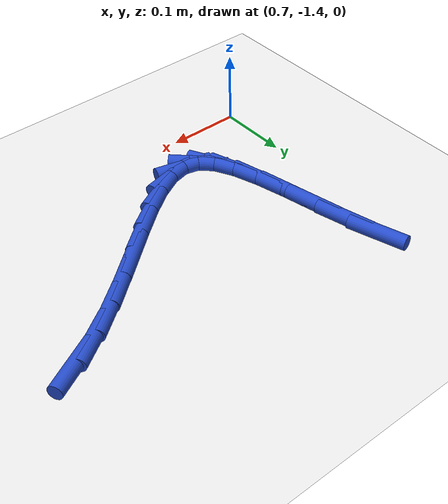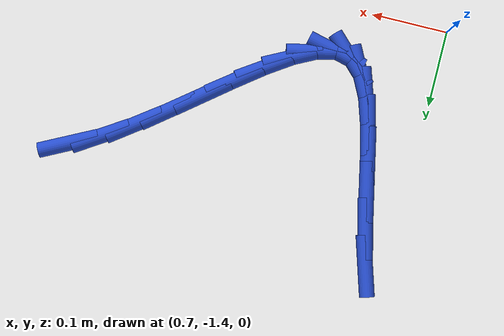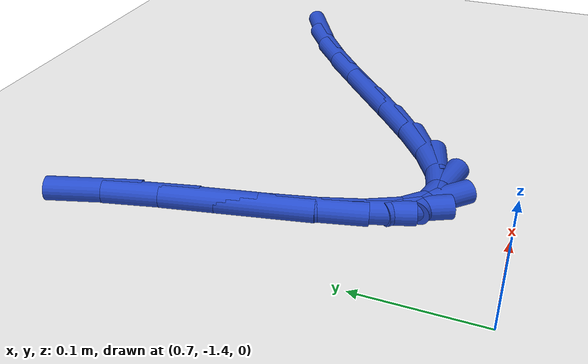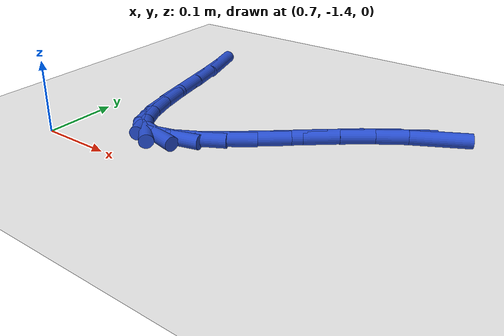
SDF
<sdf version="1.6">
 <world name="default">
  <model name="ground_plane">
   <static>1</static>
   <link name="link">
    <collision name="collision">
     <geometry><plane><normal>0 0 1</normal><size>100 100</size></plane></geometry>
     <surface><friction><ode><mu>100</mu><mu2>50</mu2></ode></friction></surface>
    </collision>
    <visual name="visual">
     <cast_shadows>0</cast_shadows>
     <geometry><plane><normal>0 0 1</normal><size>100 100</size></plane></geometry>
     <material>
      <script><uri>file://media/materials/scripts/gazebo.material</uri><name>Gazebo/WhiteGlow</name></script>
     </material>
    </visual>
   </link>
  </model>
  <model name="line">
   <link name="link_158">
    <pose>1.144235871740645 -1.1378909959665773 0.01 0 1.57 0.47214731389015957</pose>
    <collision name="collision">
     <geometry><cylinder><radius>0.01</radius><length>0.08</length></cylinder></geometry>
    </collision>
    <visual name="visual">
     <material>
      <script><name>Gazebo/Blue</name><uri>file://media/materials/scripts/gazebo.material</uri></script>
     </material>
     <geometry><cylinder><radius>0.01</radius><length>0.08</length></cylinder></geometry>
    </visual>
   </link>
   <link name="link_159">
    <pose>1.1058242495300072 -1.1575066681073916 0.01 0 1.57 0.5746946647130384</pose>
    <collision name="collision">
     <geometry><cylinder><radius>0.01</radius><length>0.08</length></cylinder></geometry>
    </collision>
    <visual name="visual">
     <material>
      <script><name>Gazebo/Blue</name><uri>file://media/materials/scripts/gazebo.material</uri></script>
     </material>
     <geometry><cylinder><radius>0.01</radius><length>0.08</length></cylinder></geometry>
    </visual>
   </link>
   <link name="link_160">
    <pose>1.067113676553233 -1.1825761002962496 0.01 0 1.57 0.6373717543687683</pose>
    <collision name="collision">
     <geometry><cylinder><radius>0.01</radius><length>0.08</length></cylinder></geometry>
    </collision>
    <visual name="visual">
     <material>
      <script><name>Gazebo/Blue</name><uri>file://media/materials/scripts/gazebo.material</uri></script>
     </material>
     <geometry><cylinder><radius>0.01</radius><length>0.08</length></cylinder></geometry>
    </visual>
   </link>
   <link name="link_161">
    <pose>1.0286617596268097 -1.2110484600849227 0.01 0 1.57 0.6701216190291546</pose>
    <collision name="collision">
     <geometry><cylinder><radius>0.01</radius><length>0.08</length></cylinder></geometry>
    </collision>
    <visual name="visual">
     <material>
      <script><name>Gazebo/Blue</name><uri>file://media/materials/scripts/gazebo.material</uri></script>
     </material>
     <geometry><cylinder><radius>0.01</radius><length>0.08</length></cylinder></geometry>
    </visual>
   </link>
   <link name="link_162">
    <pose>0.9910261055672254 -1.2408729150251838 0.01 0 1.57 0.6766933497137563</pose>
    <collision name="collision">
     <geometry><cylinder><radius>0.01</radius><length>0.08</length></cylinder></geometry>
    </collision>
    <visual name="visual">
     <material>
      <script><name>Gazebo/Blue</name><uri>file://media/materials/scripts/gazebo.material</uri></script>
     </material>
     <geometry><cylinder><radius>0.01</radius><length>0.08</length></cylinder></geometry>
    </visual>
   </link>
   <link name="link_163">
    <pose>0.9547643211909678 -1.2699986326688042 0.01 0 1.57 0.6551137618029506</pose>
    <collision name="collision">
     <geometry><cylinder><radius>0.01</radius><length>0.08</length></cylinder></geometry>
    </collision>
    <visual name="visual">
     <material>
      <script><name>Gazebo/Blue</name><uri>file://media/materials/scripts/gazebo.material</uri></script>
     </material>
     <geometry><cylinder><radius>0.01</radius><length>0.08</length></cylinder></geometry>
    </visual>
   </link>
   <link name="link_164">
    <pose>0.9204340133145238 -1.296374780567556 0.01 0 1.57 0.5955365280864191</pose>
    <collision name="collision">
     <geometry><cylinder><radius>0.01</radius><length>0.08</length></cylinder></geometry>
    </collision>
    <visual name="visual">
     <material>
      <script><name>Gazebo/Blue</name><uri>file://media/materials/scripts/gazebo.material</uri></script>
     </material>
     <geometry><cylinder><radius>0.01</radius><length>0.08</length></cylinder></geometry>
    </visual>
   </link>
   <link name="link_165">
    <pose>0.8885927887543835 -1.317950526273211 0.01 0 1.57 0.4726980505934005</pose>
    <collision name="collision">
     <geometry><cylinder><radius>0.01</radius><length>0.08</length></cylinder></geometry>
    </collision>
    <visual name="visual">
     <material>
      <script><name>Gazebo/Blue</name><uri>file://media/materials/scripts/gazebo.material</uri></script>
     </material>
     <geometry><cylinder><radius>0.01</radius><length>0.08</length></cylinder></geometry>
    </visual>
   </link>
   <link name="link_166">
    <pose>0.8597982543270333 -1.332675037337541 0.01 0 1.57 0.22714980499078483</pose>
    <collision name="collision">
     <geometry><cylinder><radius>0.01</radius><length>0.08</length></cylinder></geometry>
    </collision>
    <visual name="visual">
     <material>
      <script><name>Gazebo/Blue</name><uri>file://media/materials/scripts/gazebo.material</uri></script>
     </material>
     <geometry><cylinder><radius>0.01</radius><length>0.08</length></cylinder></geometry>
    </visual>
   </link>
   <link name="link_167">
    <pose>0.8346080168489612 -1.3384974813123178 0.01 0 1.57 -0.23857038564587973</pose>
    <collision name="collision">
     <geometry><cylinder><radius>0.01</radius><length>0.08</length></cylinder></geometry>
    </collision>
    <visual name="visual">
     <material>
      <script><name>Gazebo/Blue</name><uri>file://media/materials/scripts/gazebo.material</uri></script>
     </material>
     <geometry><cylinder><radius>0.01</radius><length>0.08</length></cylinder></geometry>
    </visual>
   </link>
   <link name="link_168">
    <pose>0.8135740431879006 -1.333381976787247 0.01 0 1.57 -0.7825122673406362</pose>
    <collision name="collision">
     <geometry><cylinder><radius>0.01</radius><length>0.08</length></cylinder></geometry>
    </collision>
    <visual name="visual">
     <material>
      <script><name>Gazebo/Blue</name><uri>file://media/materials/scripts/gazebo.material</uri></script>
     </material>
     <geometry><cylinder><radius>0.01</radius><length>0.08</length></cylinder></geometry>
    </visual>
   </link>
   <link name="link_169">
    <pose>0.7967387071423611 -1.3166435314539824 0.01 0 1.57 -1.1016666546846905</pose>
    <collision name="collision">
     <geometry><cylinder><radius>0.01</radius><length>0.08</length></cylinder></geometry>
    </collision>
    <visual name="visual">
     <material>
      <script><name>Gazebo/Blue</name><uri>file://media/materials/scripts/gazebo.material</uri></script>
     </material>
     <geometry><cylinder><radius>0.01</radius><length>0.08</length></cylinder></geometry>
    </visual>
   </link>
   <link name="link_170">
    <pose>0.7832362118712947 -1.2900046382974086 0.01 0 1.57 -1.2593250480338853</pose>
    <collision name="collision">
     <geometry><cylinder><radius>0.01</radius><length>0.08</length></cylinder></geometry>
    </collision>
    <visual name="visual">
     <material>
      <script><name>Gazebo/Blue</name><uri>file://media/materials/scripts/gazebo.material</uri></script>
     </material>
     <geometry><cylinder><radius>0.01</radius><length>0.08</length></cylinder></geometry>
    </visual>
   </link>
   <link name="link_171">
    <pose>0.7721069627208195 -1.2554364405506164 0.01 0 1.57 -1.3355016721573618</pose>
    <collision name="collision">
     <geometry><cylinder><radius>0.01</radius><length>0.08</length></cylinder></geometry>
    </collision>
    <visual name="visual">
     <material>
      <script><name>Gazebo/Blue</name><uri>file://media/materials/scripts/gazebo.material</uri></script>
     </material>
     <geometry><cylinder><radius>0.01</radius><length>0.08</length></cylinder></geometry>
    </visual>
   </link>
   <link name="link_172">
    <pose>0.7623913650370522 -1.214910081446695 0.01 0 1.57 -1.365661028894381</pose>
    <collision name="collision">
     <geometry><cylinder><radius>0.01</radius><length>0.08</length></cylinder></geometry>
    </collision>
    <visual name="visual">
     <material>
      <script><name>Gazebo/Blue</name><uri>file://media/materials/scripts/gazebo.material</uri></script>
     </material>
     <geometry><cylinder><radius>0.01</radius><length>0.08</length></cylinder></geometry>
    </visual>
   </link>
   <link name="link_173">
    <pose>0.7531298241661103 -1.1703967042187347 0.01 0 1.57 -1.3638877926127673</pose>
    <collision name="collision">
     <geometry><cylinder><radius>0.01</radius><length>0.08</length></cylinder></geometry>
    </collision>
    <visual name="visual">
     <material>
      <script><name>Gazebo/Blue</name><uri>file://media/materials/scripts/gazebo.material</uri></script>
     </material>
     <geometry><cylinder><radius>0.01</radius><length>0.08</length></cylinder></geometry>
    </visual>
   </link>
   <link name="link_174">
    <pose>0.7433627454541111 -1.1238674520998246 0.01 0 1.57 -1.3341461016265919</pose>
    <collision name="collision">
     <geometry><cylinder><radius>0.01</radius><length>0.08</length></cylinder></geometry>
    </collision>
    <visual name="visual">
     <material>
      <script><name>Gazebo/Blue</name><uri>file://media/materials/scripts/gazebo.material</uri></script>
     </material>
     <geometry><cylinder><radius>0.01</radius><length>0.08</length></cylinder></geometry>
    </visual>
   </link>
   <link name="link_175">
    <pose>0.7321305342471718 -1.0772934683230548 0.01 0 1.57 -1.2739509587405216</pose>
    <collision name="collision">
     <geometry><cylinder><radius>0.01</radius><length>0.08</length></cylinder></geometry>
    </collision>
    <visual name="visual">
     <material>
      <script><name>Gazebo/Blue</name><uri>file://media/materials/scripts/gazebo.material</uri></script>
     </material>
     <geometry><cylinder><radius>0.01</radius><length>0.08</length></cylinder></geometry>
    </visual>
   </link>
  </model>
 </world>
</sdf>
